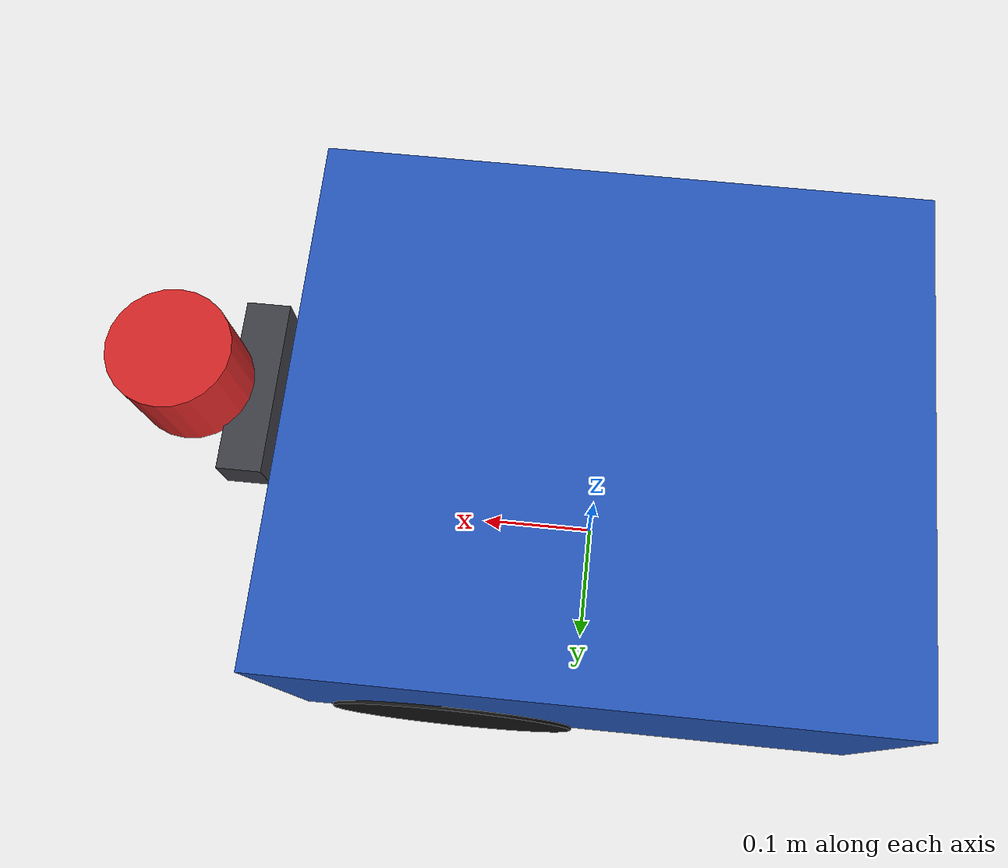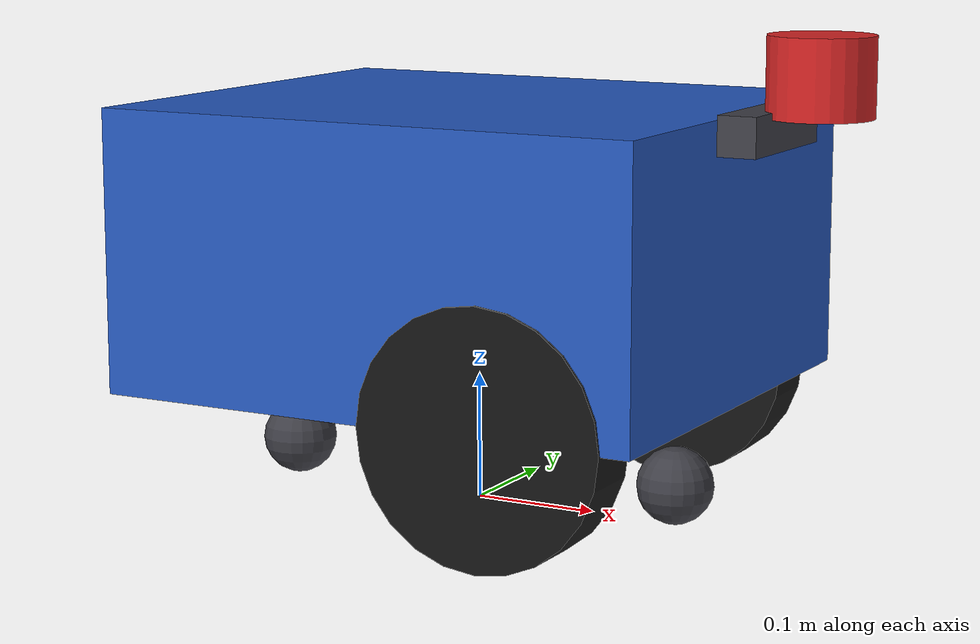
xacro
<?xml version="1.0"?>
<robot name="openhutb_car" xmlns:xacro="http://www.ros.org/wiki/xacro">

  <!-- ==================== 可调参数 ==================== -->
  <xacro:property name="PI" value="3.14159265359"/>

  <!-- 底盘几何 -->
  <xacro:property name="chassis_length" value="0.44"/>
  <xacro:property name="chassis_width"  value="0.38"/>
  <xacro:property name="chassis_height" value="0.22"/>

  <!-- 车轮几何 -->
  <xacro:property name="wheel_radius"   value="0.0975"/>
  <xacro:property name="wheel_width"    value="0.05"/>
  <xacro:property name="wheel_separation" value="0.335"/> <!-- 左右轮中心距 -->

  <!-- 车轮安装位置 -->
  <xacro:property name="wheel_x" value="0.10"/>
  <xacro:property name="wheel_y" value="${wheel_separation/2}"/>
  <xacro:property name="wheel_z" value="${wheel_radius}"/>

  <!-- 万向轮（前后支撑） -->
  <xacro:property name="caster_radius" value="0.03"/>

  <xacro:property name="chassis_z" value="${wheel_radius + chassis_height/2}"/>

  <!-- 激光雷达安装高度：车体顶面之上 -->
  <xacro:property name="laser_z" value="${chassis_z + chassis_height/2 + 0.03}"/>

  <!-- 深度相机安装高度：车体上部 -->
  <xacro:property name="camera_z" value="${chassis_z + chassis_height/2 - 0.01}"/>

  <!-- 质量与惯量 -->
  <xacro:property name="chassis_mass" value="5.0"/>
  <xacro:property name="wheel_mass"   value="0.3"/>

  <!-- ==================== 材质 ==================== -->
  <material name="dark_grey">
    <color rgba="0.25 0.25 0.28 1.0"/>
  </material>
  <material name="blue">
    <color rgba="0.15 0.35 0.75 1.0"/>
  </material>
  <material name="black">
    <color rgba="0.08 0.08 0.08 1.0"/>
  </material>
  <material name="red">
    <color rgba="0.85 0.15 0.15 1.0"/>
  </material>

  <!-- ==================== 惯量计算宏 ==================== -->
  <xacro:macro name="box_inertia" params="m x y z">
    <inertial>
      <mass value="${m}"/>
      <inertia ixx="${m*(y*y+z*z)/12.0}" ixy="0.0" ixz="0.0"
               iyy="${m*(x*x+z*z)/12.0}" iyz="0.0"
               izz="${m*(x*x+y*y)/12.0}"/>
    </inertial>
  </xacro:macro>

  <xacro:macro name="cylinder_inertia" params="m r l">
    <inertial>
      <mass value="${m}"/>
      <inertia ixx="${m*(3*r*r+l*l)/12.0}" ixy="0.0" ixz="0.0"
               iyy="${m*(3*r*r+l*l)/12.0}" iyz="0.0"
               izz="${m*r*r/2.0}"/>
    </inertial>
  </xacro:macro>

  <!-- ==================== base_footprint ==================== -->
  <!-- 地面投影点，作为整车的 TF 根节点 -->
  <link name="base_footprint"/>

  <!-- ==================== base_link（车体） ==================== -->
  <!-- 车体中心位于 chassis_z 高度，保证底盘离地、不与地面摩擦 -->
  <link name="base_link">
    <visual>
      <origin xyz="0 0 ${chassis_z}" rpy="0 0 0"/>
      <geometry>
        <box size="${chassis_length} ${chassis_width} ${chassis_height}"/>
      </geometry>
      <material name="blue"/>
    </visual>
    <collision>
      <origin xyz="0 0 ${chassis_z}" rpy="0 0 0"/>
      <geometry>
        <box size="${chassis_length} ${chassis_width} ${chassis_height}"/>
      </geometry>
    </collision>
    <xacro:box_inertia m="${chassis_mass}" x="${chassis_length}" y="${chassis_width}" z="${chassis_height}"/>
  </link>

  <joint name="base_joint" type="fixed">
    <parent link="base_footprint"/>
    <child link="base_link"/>
    <origin xyz="0 0 0" rpy="0 0 0"/>
  </joint>

  <!-- ==================== 左驱动轮 ==================== -->
  <link name="left_wheel_link">
    <visual>
      <origin xyz="0 0 0" rpy="${PI/2} 0 0"/>
      <geometry><cylinder radius="${wheel_radius}" length="${wheel_width}"/></geometry>
      <material name="black"/>
    </visual>
    <collision>
      <origin xyz="0 0 0" rpy="${PI/2} 0 0"/>
      <geometry><cylinder radius="${wheel_radius}" length="${wheel_width}"/></geometry>
    </collision>
    <xacro:cylinder_inertia m="${wheel_mass}" r="${wheel_radius}" l="${wheel_width}"/>
  </link>

  <joint name="left_wheel_joint" type="continuous">
    <parent link="base_link"/>
    <child link="left_wheel_link"/>
    <origin xyz="${wheel_x} ${wheel_y} ${wheel_z}" rpy="0 0 0"/>
    <axis xyz="0 1 0"/>
    <dynamics damping="0.1" friction="0.0"/>
  </joint>

  <!-- ==================== 右驱动轮 ==================== -->
  <link name="right_wheel_link">
    <visual>
      <origin xyz="0 0 0" rpy="${PI/2} 0 0"/>
      <geometry><cylinder radius="${wheel_radius}" length="${wheel_width}"/></geometry>
      <material name="black"/>
    </visual>
    <collision>
      <origin xyz="0 0 0" rpy="${PI/2} 0 0"/>
      <geometry><cylinder radius="${wheel_radius}" length="${wheel_width}"/></geometry>
    </collision>
    <xacro:cylinder_inertia m="${wheel_mass}" r="${wheel_radius}" l="${wheel_width}"/>
  </link>

  <joint name="right_wheel_joint" type="continuous">
    <parent link="base_link"/>
    <child link="right_wheel_link"/>
    <origin xyz="${wheel_x} ${-wheel_y} ${wheel_z}" rpy="0 0 0"/>
    <axis xyz="0 1 0"/>
    <dynamics damping="0.1" friction="0.0"/>
  </joint>

  <link name="front_caster_link">
    <visual>
      <origin xyz="0 0 0" rpy="0 0 0"/>
      <geometry><sphere radius="${caster_radius}"/></geometry>
      <material name="dark_grey"/>
    </visual>
    <inertial>
      <mass value="0.05"/>
      <inertia ixx="1e-5" ixy="0" ixz="0" iyy="1e-5" iyz="0" izz="1e-5"/>
    </inertial>
  </link>

  <joint name="front_caster_joint" type="fixed">
    <parent link="base_link"/>
    <child link="front_caster_link"/>
    <origin xyz="${chassis_length/2 - 0.05} 0 ${caster_radius}" rpy="0 0 0"/>
  </joint>

  <!-- ==================== 后万向轮（被动支撑） ==================== -->
  <link name="rear_caster_link">
    <visual>
      <origin xyz="0 0 0" rpy="0 0 0"/>
      <geometry><sphere radius="${caster_radius}"/></geometry>
      <material name="dark_grey"/>
    </visual>
    <inertial>
      <mass value="0.05"/>
      <inertia ixx="1e-5" ixy="0" ixz="0" iyy="1e-5" iyz="0" izz="1e-5"/>
    </inertial>
  </link>

  <joint name="rear_caster_joint" type="fixed">
    <parent link="base_link"/>
    <child link="rear_caster_link"/>
    <origin xyz="${-chassis_length/2 + 0.05} 0 ${caster_radius}" rpy="0 0 0"/>
  </joint>

  <!-- ==================== 激光雷达 ======================================== -->
  <!-- 采用 Hokuyo URG-04LX 风格：360° 扫描，量程 0.12~5.6m
       安装位置说明：雷达需置于车体轮廓之外，否则激光会扫到自身车体，
       在正前方产生虚假的近距离回波（自遮挡）。此处将雷达前移至车头
       前方 0.06m 处，略超出车体边界，避免自遮挡。 -->
  <link name="laser_link">
    <visual>
      <origin xyz="0 0 0" rpy="0 0 0"/>
      <geometry><cylinder radius="0.04" length="0.06"/></geometry>
      <material name="red"/>
    </visual>
    <collision>
      <origin xyz="0 0 0" rpy="0 0 0"/>
      <geometry><cylinder radius="0.04" length="0.06"/></geometry>
    </collision>
    <inertial>
      <mass value="0.16"/>
      <inertia ixx="1.6e-4" ixy="0" ixz="0" iyy="1.6e-4" iyz="0" izz="2.5e-4"/>
    </inertial>
  </link>

  <joint name="laser_joint" type="fixed">
    <parent link="base_link"/>
    <child link="laser_link"/>
    <!-- 前移：车体半长 0.22 + 0.06 余量 = 0.28 -->
    <origin xyz="${chassis_length/2 + 0.06} 0 ${laser_z}" rpy="0 0 0"/>
  </joint>

  <!-- ==================== RGB-D 深度相机 ==================== -->
  <link name="camera_link">
    <visual>
      <origin xyz="0 0 0" rpy="0 0 0"/>
      <geometry><box size="0.03 0.12 0.03"/></geometry>
      <material name="dark_grey"/>
    </visual>
    <collision>
      <origin xyz="0 0 0" rpy="0 0 0"/>
      <geometry><box size="0.03 0.12 0.03"/></geometry>
    </collision>
    <inertial>
      <mass value="0.1"/>
      <inertia ixx="1e-4" ixy="0" ixz="0" iyy="1e-4" iyz="0" izz="1e-4"/>
    </inertial>
  </link>

  <joint name="camera_joint" type="fixed">
    <parent link="base_link"/>
    <child link="camera_link"/>
    <!-- 相机略前移，避免被车体边缘遮挡视野 -->
    <origin xyz="${chassis_length/2 + 0.02} 0 ${camera_z}" rpy="0 0 0"/>
  </joint>

  <!-- 相机光学坐标系：z 轴向前，x 轴向右，y 轴向下（REP-103 光学约定） -->
  <link name="camera_optical_link"/>
  <joint name="camera_optical_joint" type="fixed">
    <parent link="camera_link"/>
    <child link="camera_optical_link"/>
    <origin xyz="0 0 0" rpy="${-PI/2} 0 ${-PI/2}"/>
  </joint>

  <!-- ==================== Gazebo 插件 ==================== -->
  <gazebo>
    <!-- 差速驱动控制器：订阅 /cmd_vel，发布 /odom -->
    <plugin name="diff_drive_controller" filename="libgazebo_ros_diff_drive.so">
      <updateRate>50.0</updateRate>
      <leftJoint>left_wheel_joint</leftJoint>
      <rightJoint>right_wheel_joint</rightJoint>
      <wheelSeparation>${wheel_separation}</wheelSeparation>
      <wheelDiameter>${wheel_radius*2}</wheelDiameter>
      <wheelAcceleration>1.5</wheelAcceleration>
      <wheelTorque>20</wheelTorque>
      <commandTopic>cmd_vel</commandTopic>
      <odometryTopic>odom</odometryTopic>
      <odometryFrame>odom</odometryFrame>
      <odometrySource>1</odometrySource>
      <robotBaseFrame>base_footprint</robotBaseFrame>
      <publishWheelTF>false</publishWheelTF>
      <publishOdomTF>true</publishOdomTF>
      <publishWheelJointState>true</publishWheelJointState>
      <legacyMode>false</legacyMode>
    </plugin>

    <!-- 关节状态发布（供 robot_state_publisher 使用） -->
    <plugin name="joint_state_publisher_plugin" filename="libgazebo_ros_joint_state_publisher.so">
      <updateRate>50</updateRate>
      <jointName>left_wheel_joint</jointName>
      <jointName>right_wheel_joint</jointName>
    </plugin>
  </gazebo>

  <!-- 激光雷达插件 -->
  <gazebo reference="laser_link">
    <sensor type="ray" name="laser_sensor">
      <pose>0 0 0 0 0 0</pose>
      <visualize>true</visualize>
      <update_rate>10</update_rate>
      <ray>
        <scan>
          <horizontal>
            <samples>360</samples>
            <resolution>1</resolution>
            <min_angle>-3.14159265</min_angle>
            <max_angle>3.14159265</max_angle>
          </horizontal>
        </scan>
        <range>
          <min>0.12</min>
          <max>5.6</max>
          <resolution>0.01</resolution>
        </range>
        <noise>
          <type>gaussian</type>
          <mean>0.0</mean>
          <stddev>0.01</stddev>
        </noise>
      </ray>
      <plugin name="gazebo_ros_laser_controller" filename="libgazebo_ros_laser.so">
        <topicName>scan</topicName>
        <frameName>laser_link</frameName>
      </plugin>
    </sensor>
  </gazebo>

  <gazebo reference="camera_link">
    <sensor type="depth" name="depth_camera_sensor">
      <update_rate>15</update_rate>
      <camera>
        <horizontal_fov>1.3962634</horizontal_fov>  <!-- 80 deg -->
        <image>
          <width>640</width>
          <height>480</height>
          <format>R8G8B8</format>
        </image>
        <clip>
          <near>0.05</near>
          <far>30.0</far>
        </clip>
        <noise>
          <type>gaussian</type>
          <mean>0.0</mean>
          <stddev>0.007</stddev>
        </noise>
      </camera>
      <plugin name="gazebo_ros_depth_camera_controller"
              filename="libgazebo_ros_depth_camera.so">
        <alwaysOn>true</alwaysOn>
        <updateRate>15.0</updateRate>
        <cameraName>camera</cameraName>
        <imageTopicName>rgb/image_raw</imageTopicName>
        <depthImageTopicName>depth/image_raw</depthImageTopicName>
        <pointCloudTopicName>depth/points</pointCloudTopicName>
        <cameraInfoTopicName>rgb/camera_info</cameraInfoTopicName>
        <depthImageCameraInfoTopicName>depth/camera_info</depthImageCameraInfoTopicName>
        <frameName>camera_optical_link</frameName>
        <hackBaseline>0.07</hackBaseline>
        <distortionK1>0.0</distortionK1>
        <distortionK2>0.0</distortionK2>
        <distortionK3>0.0</distortionK3>
        <distortionT1>0.0</distortionT1>
        <distortionT2>0.0</distortionT2>
      </plugin>
    </sensor>
  </gazebo>

  <!-- 材料颜色微调（reference 必须指向真实存在的 link 名） -->
  <gazebo reference="base_link">
    <material>Gazebo/Blue</material>
    <!-- 车体与地面摩擦：略低，避免车体接触地面时把整车拖住 -->
    <mu1>0.05</mu1>
    <mu2>0.05</mu2>
  </gazebo>
  <gazebo reference="laser_link">
    <material>Gazebo/Red</material>
  </gazebo>
  <gazebo reference="camera_link">
    <material>Gazebo/Black</material>
  </gazebo>

  <!-- 驱动轮摩擦：必须足够高，否则车轮打滑空转、车辆无法前进。
       这是差速驱动机器人仿真的关键参数。 -->
  <gazebo reference="left_wheel_link">
    <material>Gazebo/Black</material>
    <mu1>1.0</mu1>
    <mu2>1.0</mu2>
    <kp>1000000.0</kp>
    <kd>100.0</kd>
    <minDepth>0.001</minDepth>
    <maxVel>0.0</maxVel>
  </gazebo>
  <gazebo reference="right_wheel_link">
    <material>Gazebo/Black</material>
    <mu1>1.0</mu1>
    <mu2>1.0</mu2>
    <kp>1000000.0</kp>
    <kd>100.0</kd>
    <minDepth>0.001</minDepth>
    <maxVel>0.0</maxVel>
  </gazebo>

</robot>
